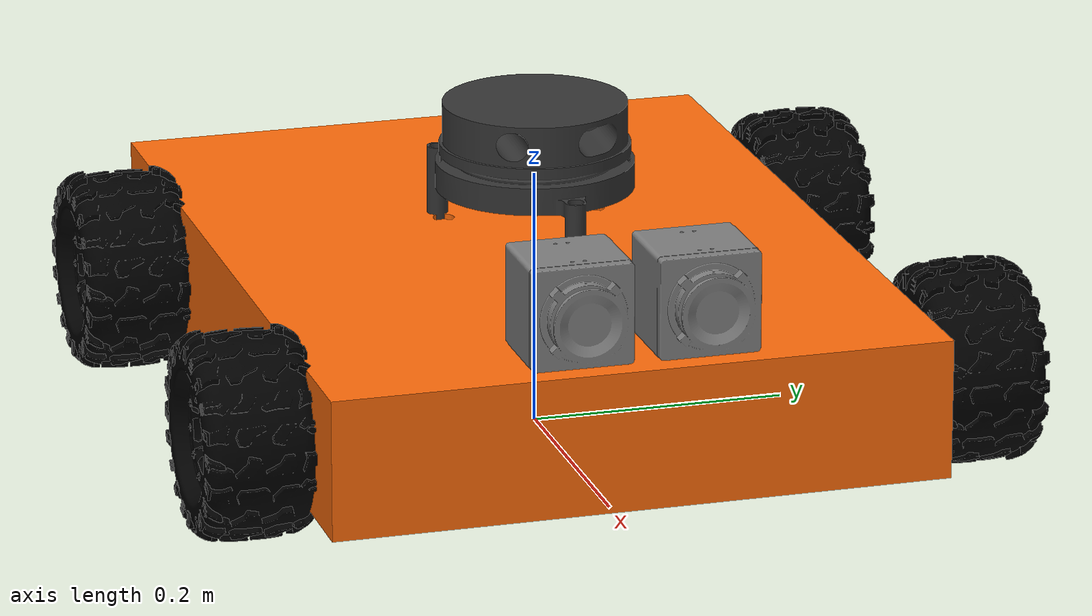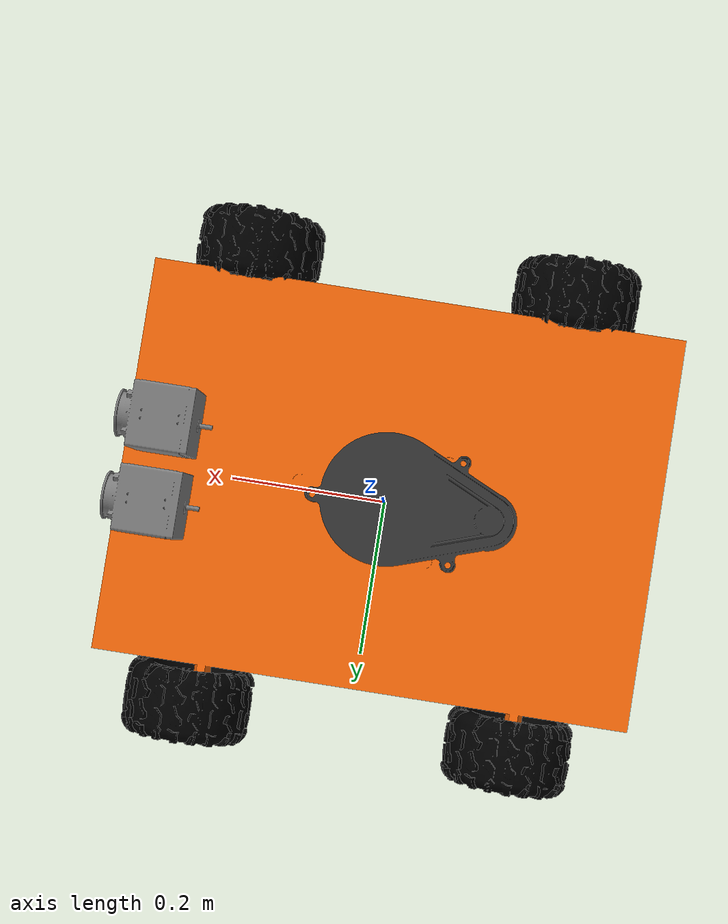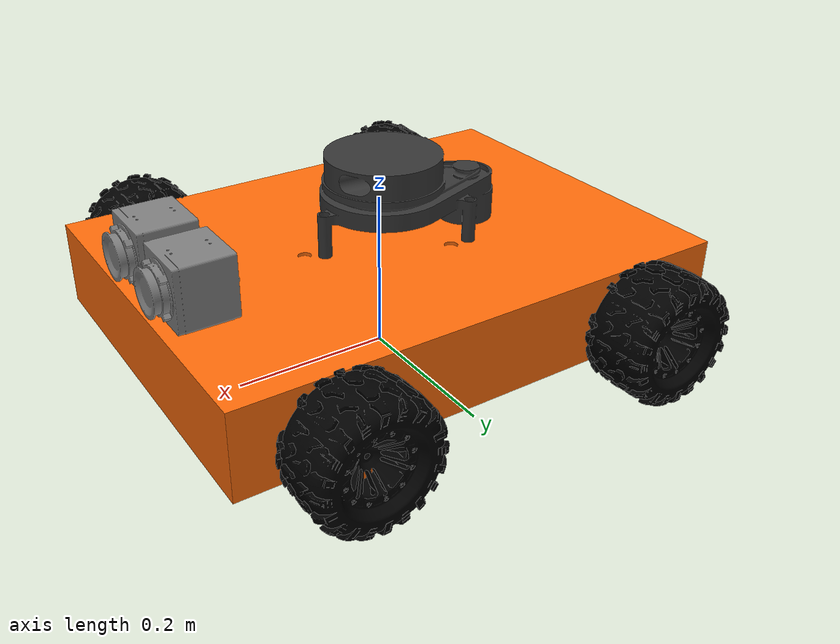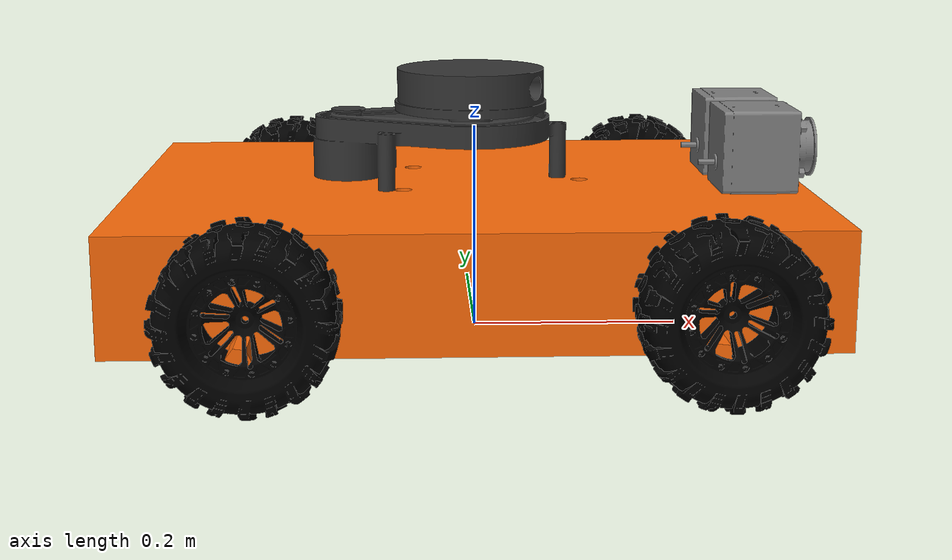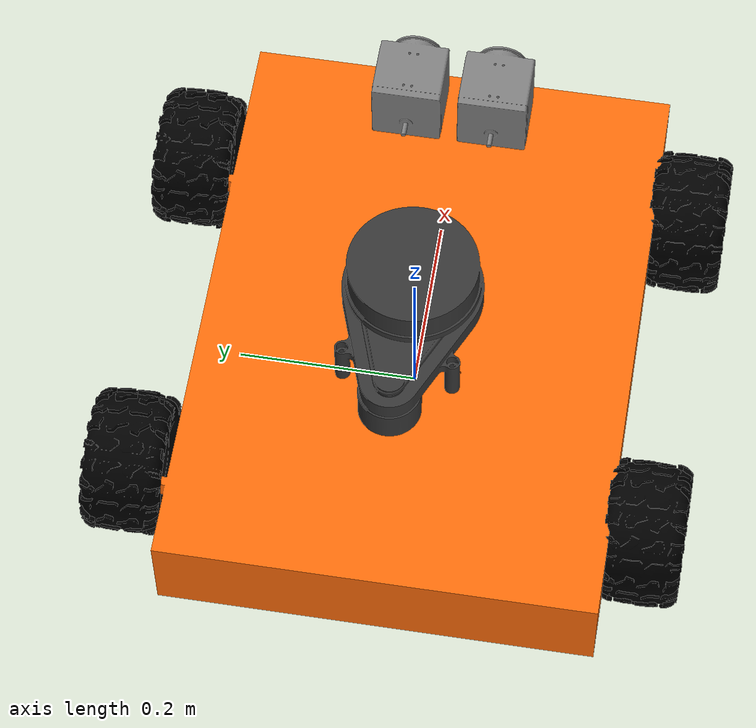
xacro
<?xml version="1.0" ?>
<robot name="agribot" xmlns:xacro="http://www.ros.org/wiki/xacro">

<xacro:include filename="$(find agribot_description)/urdf/materials.xacro" />
<xacro:include filename="$(find agribot_description)/urdf/agribot_ros2_control.xacro" />
<xacro:include filename="$(find agribot_description)/urdf/agribot_gazebo.xacro" />

<!-- Scaling factor: 2.143 -->
<!-- Linear dimensions: multiply by 2.143 -->
<!-- Mass: multiply by 2.143^3 = 9.844 -->
<!-- Inertia: multiply by 2.143^5 = 45.184 -->

<!-- New base footprint at ground level -->
<link name="base_footprint"/>

<!-- Joint to raise the robot by 0.075005 (0.035 * 2.143) -->
<joint name="base_footprint_joint" type="fixed">
  <origin xyz="0 0 0.075005" rpy="0 0 3.141593"/>
  <parent link="base_footprint"/>
  <child link="base_link"/>
</joint>

<link name="base_link">
  <inertial>
    <origin xyz="-0.000001684 0.0 0.053505" rpy="0 0 0"/>
    <mass value="10.0"/>
    <inertia ixx="0.195" iyy="0.354" izz="0.530" ixy="0.0" iyz="0.0" ixz="0.0"/>
  </inertial>
  <visual>
    <origin xyz="0 0 0" rpy="0 0 0"/>
    <geometry>
      <mesh filename="file://$(find agribot_description)/meshes/base_link.stl" scale="0.002143 0.002143 0.002143"/>
    </geometry>
    <material name="orange"/>
  </visual>
  <collision>
    <origin xyz="0 0 0" rpy="0 0 0"/>
    <geometry>
      <mesh filename="file://$(find agribot_description)/meshes/base_link.stl" scale="0.002143 0.002143 0.002143"/>
    </geometry>
  </collision>
</link>

<link name="right_rear_wheel_1">
  <inertial>
    <origin xyz="-0.000032274 -0.001599 0.000421" rpy="0 0 0"/>
    <mass value="3.0"/>
    <inertia ixx="0.00692" iyy="0.01081" izz="0.00692" ixy="0.0" iyz="0.0" ixz="0.0"/>
  </inertial>
  <visual>
    <origin xyz="0.199299 0.27859 -0.012858" rpy="0 0 0"/>
    <geometry>
      <mesh filename="file://$(find agribot_description)/meshes/right_rear_wheel_1.stl" scale="0.002143 0.002143 0.002143"/>
    </geometry>
    <material name="black"/>
  </visual>
  <collision>
    <origin xyz="0.199299 0.27859 -0.012858" rpy="0 0 0"/>
    <geometry>
      <mesh filename="file://$(find agribot_description)/meshes/right_rear_wheel_1.stl" scale="0.002143 0.002143 0.002143"/>
    </geometry>
  </collision>
</link>

<link name="right_front_wheel_1">
  <inertial>
    <origin xyz="-0.000032268 -0.001599 0.000421" rpy="0 0 0"/>
    <mass value="3.0"/>
    <inertia ixx="0.00692" iyy="0.01081" izz="0.00692" ixy="0.0" iyz="0.0" ixz="0.0"/>
  </inertial>
  <visual>
    <origin xyz="-0.197156 0.27859 -0.012858" rpy="0 0 0"/>
    <geometry>
      <mesh filename="file://$(find agribot_description)/meshes/right_front_wheel_1.stl" scale="0.002143 0.002143 0.002143"/>
    </geometry>
    <material name="black"/>
  </visual>
  <collision>
    <origin xyz="-0.197156 0.27859 -0.012858" rpy="0 0 0"/>
    <geometry>
      <mesh filename="file://$(find agribot_description)/meshes/right_front_wheel_1.stl" scale="0.002143 0.002143 0.002143"/>
    </geometry>
  </collision>
</link>

<link name="left_rear_wheel_1">
  <inertial>
    <origin xyz="-0.000032274 0.001599 -0.000421" rpy="0 0 0"/>
    <mass value="3.0"/>
    <inertia ixx="0.00692" iyy="0.01081" izz="0.00692" ixy="0.0" iyz="0.0" ixz="0.0"/>
  </inertial>
  <visual>
    <origin xyz="0.199299 -0.27859 -0.012858" rpy="0 0 0"/>
    <geometry>
      <mesh filename="file://$(find agribot_description)/meshes/left_rear_wheel_1.stl" scale="0.002143 0.002143 0.002143"/>
    </geometry>
    <material name="black"/>
  </visual>
  <collision>
    <origin xyz="0.199299 -0.27859 -0.012858" rpy="0 0 0"/>
    <geometry>
      <mesh filename="file://$(find agribot_description)/meshes/left_rear_wheel_1.stl" scale="0.002143 0.002143 0.002143"/>
    </geometry>
  </collision>
</link>

<link name="left_front_wheel_1">
  <inertial>
    <origin xyz="-0.000032268 0.001599 -0.000421" rpy="0 0 0"/>
    <mass value="3.0"/>
    <inertia ixx="0.00692" iyy="0.01081" izz="0.00692" ixy="0.0" iyz="0.0" ixz="0.0"/>
  </inertial>
  <visual>
    <origin xyz="-0.197156 -0.27859 -0.012858" rpy="0 0 0"/>
    <geometry>
      <mesh filename="file://$(find agribot_description)/meshes/left_front_wheel_1.stl" scale="0.002143 0.002143 0.002143"/>
    </geometry>
    <material name="black"/>
  </visual>
  <collision>
    <origin xyz="-0.197156 -0.27859 -0.012858" rpy="0 0 0"/>
    <geometry>
      <mesh filename="file://$(find agribot_description)/meshes/left_front_wheel_1.stl" scale="0.002143 0.002143 0.002143"/>
    </geometry>
  </collision>
</link>

<link name="Camera_1">
  <inertial>
    <origin xyz="0.040985 0.035627 0.073511" rpy="0 0 0"/>
    <mass value="0.200"/>
    <inertia ixx="0.000193" iyy="0.000199" izz="0.000199" ixy="0.0" iyz="0.0" ixz="0.0"/>
  </inertial>
  <visual>
    <origin xyz="0.308151 -0.014462 -0.037991" rpy="0 0 0"/>
    <geometry>
      <mesh filename="file://$(find agribot_description)/meshes/Camera_1.stl" scale="0.002143 0.002143 0.002143"/>
    </geometry>
    <material name="gray"/>
  </visual>
  <collision>
    <origin xyz="0.308151 -0.014462 -0.037991" rpy="0 0 0"/>
    <geometry>
      <mesh filename="file://$(find agribot_description)/meshes/Camera_1.stl" scale="0.002143 0.002143 0.002143"/>
    </geometry>
  </collision>
</link>

<link name="Camera_2">
  <inertial>
    <origin xyz="0.041071 -0.060820 0.073511" rpy="0 0 0"/>
    <mass value="0.200"/>
    <inertia ixx="0.000193" iyy="0.000199" izz="0.000199" ixy="0.0" iyz="0.0" ixz="0.0"/>
  </inertial>
  <visual>
    <origin xyz="0.308151 -0.014462 -0.037991" rpy="0 0 0"/>
    <geometry>
      <mesh filename="file://$(find agribot_description)/meshes/Camera_2.stl" scale="0.002143 0.002143 0.002143"/>
    </geometry>
    <material name="gray"/>
  </visual>
  <collision>
    <origin xyz="0.308151 -0.014462 -0.037991" rpy="0 0 0"/>
    <geometry>
      <mesh filename="file://$(find agribot_description)/meshes/Camera_2.stl" scale="0.002143 0.002143 0.002143"/>
    </geometry>
  </collision>
</link>

<link name="laser_link">
  <inertial>
    <origin xyz="-0.021430 0.010715 -0.042860" rpy="0 0 3.141593"/>
    <mass value="0.2"/>
    <inertia ixx="0.000385" iyy="0.000786" izz="0.000891" ixy="0.000065" iyz="-0.000025" ixz="0.000148"/>
  </inertial>
  <visual>
    <origin xyz="-0.021430 0.010715 -0.203585" rpy="0 0 3.141593"/>
    <geometry>
      <mesh filename="file://$(find agribot_description)/meshes/LIDAR_X4_PRO_1.stl" scale="0.002143 0.002143 0.002143"/>
    </geometry>
    <material name="charcoal_black"/>
  </visual>
  <collision>
    <origin xyz="-0.021430 0.010715 -0.203585" rpy="0 0 3.141593"/>
    <geometry>
      <mesh filename="file://$(find agribot_description)/meshes/LIDAR_X4_PRO_1.stl" scale="0.002143 0.002143 0.002143"/>
    </geometry>
  </collision>
</link>

<joint name="rfw_joint" type="continuous">
  <origin xyz="-0.199299 -0.27859 0.012858" rpy="0 0 0"/>
  <parent link="base_link"/>
  <child link="right_rear_wheel_1"/>
  <axis xyz="0.0 -1.0 0.0"/>
</joint>

<joint name="rrw_joint" type="continuous">
  <origin xyz="0.197156 -0.27859 0.012858" rpy="0 0 0"/>
  <parent link="base_link"/>
  <child link="right_front_wheel_1"/>
  <axis xyz="0.0 -1.0 0.0"/>
</joint>

<joint name="lfw_joint" type="continuous">
  <origin xyz="-0.199299 0.27859 0.012858" rpy="0 0 0"/>
  <parent link="base_link"/>
  <child link="left_rear_wheel_1"/>
  <axis xyz="0.0 -1.0 0.0"/>
</joint>

<joint name="lrw_joint" type="continuous">
  <origin xyz="0.197156 0.27859 0.012858" rpy="0 0 0"/>
  <parent link="base_link"/>
  <child link="left_front_wheel_1"/>
  <axis xyz="0.0 -1.0 0.0"/>
</joint>

<joint name="camera_1_joint" type="fixed">
  <origin xyz="-0.308151 0.014462 0.037991" rpy="0 0 0"/>
  <parent link="base_link"/>
  <child link="Camera_1"/>
</joint>

<joint name="camera_2_joint" type="fixed">
  <origin xyz="-0.308151 0.014462 0.037991" rpy="0 0 0"/>
  <parent link="base_link"/>
  <child link="Camera_2"/>
</joint>

<joint name="lidar_joint" type="fixed">
  <origin xyz="0.0 0.0 0.165011" rpy="0 0 3.141593"/>
  <parent link="base_link"/>
  <child link="laser_link"/>
</joint>

<!-- IMU Link -->
<link name="imu_link">
  <inertial>
    <origin xyz="0 0 0" rpy="0 0 0"/>
    <mass value="0.001"/>
    <inertia ixx="0.000001" ixy="0.0" ixz="0.0"
             iyy="0.000001" iyz="0.0"
             izz="0.000001"/>
  </inertial>
  <!-- No visual element - IMU is inside base_link -->
  <!-- Optional: Add a small box for visualization in RViz if needed -->
</link>

<joint name="imu_joint" type="fixed">
  <origin xyz="0.1 0 0.05" rpy="0 0 0"/>
  <parent link="base_link"/>
  <child link="imu_link"/>
</joint>

</robot>

<!-- Note that the wheel names are mixed because of a mistake in the naming when designed in Fusion360 -->

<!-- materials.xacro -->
<robot name="vehicle_base_lidar2" xmlns:xacro="http://www.ros.org/wiki/xacro" >

<material name="silver">
  <color rgba="0.700 0.700 0.700 1.000"/>
</material>

<material name="orange">
  <color rgba="1.000 0.423 0.039 1.000"/>
</material>

<material name="charcoal_black">
  <color rgba="0.212 0.212 0.212 1.000"/>
</material>

<material name="gray">
  <color rgba="0.500 0.500 0.500 1.000"/>
</material>

<material name="black">
  <color rgba="0.000 0.000 0.000 1.000"/>
</material>

</robot>
